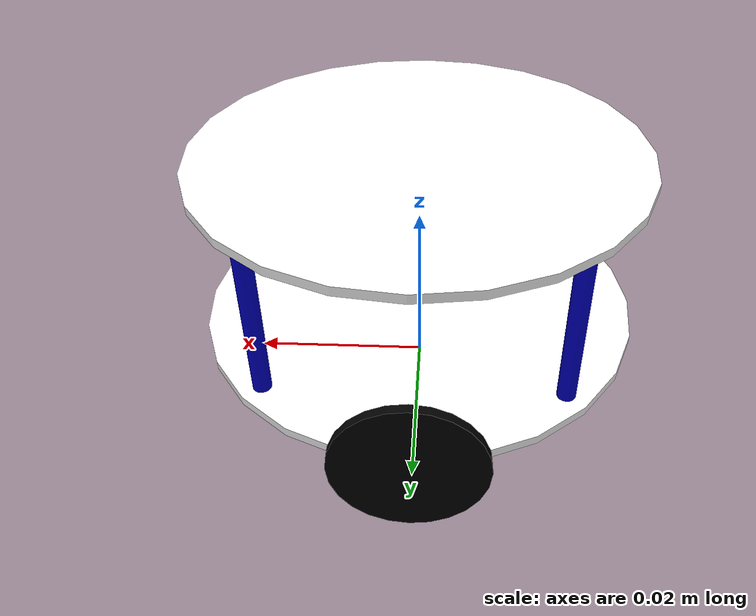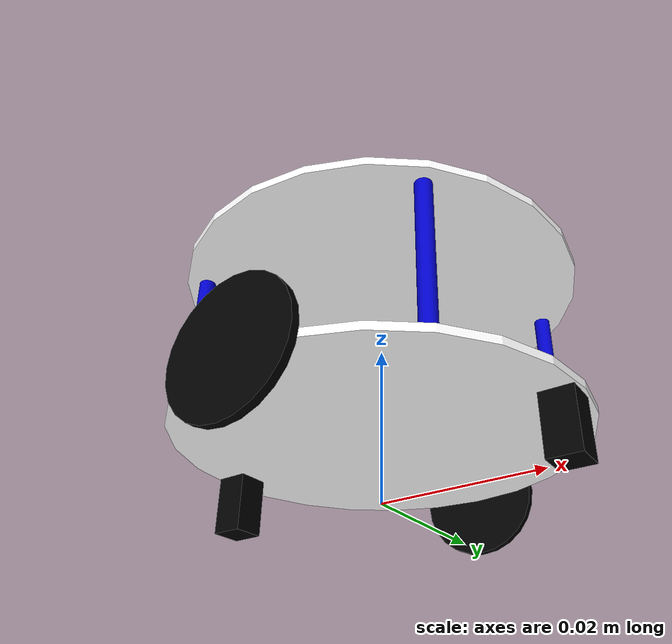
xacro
<?xml version="1.0"?>

<robot name="inof" xmlns:xacro="http://www.ros.org/wiki/xacro">

	<xacro:property name="layerlen"  value="0.001"/>
	<xacro:property name="layerradi" value="0.025"/>
	<xacro:property name="supportlen"  value="0.02"/>
	<xacro:property name="supportradi" value="0.001"/>
	<xacro:property name="wheellen"  value="0.001"/>
	<xacro:property name="wheelradi" value="0.008"/>
	<xacro:property name="casterlen" value="0.004"/>
	<xacro:property name="casterwid" value="0.004"/>
	<xacro:property name="casterhgt" value="0.0079"/>

	<xacro:property name="layerweight" value="0.0021009"/>
	<xacro:property name="supportweight" value="0.0000672"/>
	<xacro:property name="wheelweight" value="0.0002151"/>
	<xacro:property name="casterweight" value="0.0001352"/>

	<material name="white_tr">
		<color rgba="1 1 1 1"/>
	</material>

	<material name="blackish">
		<color rgba="0 0 0.8 1"/>
	</material>

	<material name="black">
		<color rgba="0 0 0 1"/>
	</material>

	<xacro:macro name="layer" params="level x y z">
		<link name="layer${level}">
			<visual>
				<origin rpy="0 0 0" xyz="${x} ${y} ${z}"/>
				<geometry>
					<cylinder length="${layerlen}" radius="${layerradi}"/>
				</geometry>
				<material name="white_tr"/>
			</visual>
			<collision>
				<origin rpy="0 0 0" xyz="${x} ${y} ${z}"/>
				<geometry>
					<cylinder length="${layerlen}" radius="${layerradi}"/>
				</geometry>
			</collision>
			<inertial>
				<origin rpy="0 0 0" xyz="${x} ${y} ${z}"/>
				<mass value="${layerweight}"/>
				<inertia ixx="${(layerweight*((3*layerradi*layerradi)+(layerlen*layerlen)))/12}" ixy="0" ixz="0" iyy="${(layerweight*((3*layerradi*layerradi)+(layerlen*layerlen)))/12}" iyz="0" izz="${(layerweight*(layerradi*layerradi))/2}"/>
			</inertial>
		</link>
		<gazebo reference="layer${level}">
			<material>Gazebo/BlackTransparent</material>
		</gazebo>
	</xacro:macro>

	<xacro:macro name="support_leg" params="number x y z">
		<link name="support_leg${number}">
			<visual>
				<origin rpy="0 0 0" xyz="${x} ${y} ${z}"/>
				<geometry>
					<cylinder length="${supportlen}" radius="${supportradi}"/>
				</geometry>
				<material name="blackish"/>
			</visual>
			<collision>
				<origin rpy="0 0 0" xyz="${x} ${y} ${z}"/>
				<geometry>
					<cylinder length="${supportlen}" radius="${supportradi}"/>
				</geometry>
			</collision>
			<inertial>
				<origin rpy="0 0 0" xyz="${x} ${y} ${z}"/>
				<mass value="${supportweight}"/>
				<inertia ixx="${(supportweight*((3*supportradi*supportradi)+(supportlen*supportlen)))/12}" ixy="0" ixz="0" iyy="${(supportweight*((3*supportradi*supportradi)+(supportlen*supportlen)))/12}" iyz="0" izz="${(supportweight*(supportradi*supportradi))/2}"/>
			</inertial>
		</link>
	</xacro:macro>

	<xacro:macro name="caster_wheel" params="num x y z c">
		<link name="caster_wheel${num}">
			<visual>
				<origin rpy="0 0 0" xyz="${x} ${y} ${z}"/>
				<geometry>
					<box size="${casterlen} ${casterwid} ${casterhgt}"/>
				</geometry>
				<material name="black"/>
			</visual>
			<collision>
				<origin rpy="0 0 0" xyz="${x} ${y} ${z}"/>
				<geometry>
					<box size="${casterlen} ${casterwid} ${casterhgt}"/>
				</geometry>
			</collision>
			<inertial>
				<origin rpy="0 0 0" xyz="${x} ${y} ${z}"/>
				<mass value="${casterweight}"/>
				<inertia ixx="${(casterweight*((casterlen*casterlen)+(casterhgt*casterhgt)))/12}" ixy="0" ixz="0" iyy="${(casterweight*((casterwid*casterwid)+(casterhgt*casterhgt)))/12}" iyz="0" izz="${(casterweight*((casterlen*casterlen)+(casterwid*casterwid)))/2}"/>
			</inertial>
		</link>
	</xacro:macro>

	<xacro:macro name="wheel" params="pos x y z">
		<link name="wheel${pos}">
			<visual>
				<origin rpy="0 ${pi/2} 0" xyz="${x} ${y} ${z}"/>
				<geometry>
					<cylinder length="${wheellen}" radius="${wheelradi}"/>
				</geometry>
				<material name="black"/>
			</visual>
			<collision>
				<origin rpy="0 ${pi/2} 0" xyz="${x} ${y} ${z}"/>
				<geometry>
					<cylinder length="${wheellen}" radius="${wheelradi}"/>
				</geometry>
			</collision>
			<inertial>
				<origin rpy="0 ${pi/2} 0" xyz="${x} ${y} ${z}"/>
				<mass value="${wheelweight}"/>
				<inertia ixx="${(wheelweight*((3*wheelradi*wheelradi)+(wheellen*wheellen)))/12}" ixy="0" ixz="0" iyy="${(wheelweight*((3*wheelradi*wheelradi)+(wheellen*wheellen)))/12}" iyz="0" izz="${(wheelweight*(wheelradi*wheelradi))/2}"/>
			</inertial>
		</link>

		<gazebo reference="wheel${pos}">
			<mu1 value="200.0"/>
			<mu2 value="100.0"/>
			<kp value="10000000.0"/>
			<kd value="1.0"/>
			<material>Gazebo/Grey</material>
		</gazebo>
	</xacro:macro>

	<xacro:macro name="layer_wheel_joint" params="pos x y z">
		<joint name="layer0_wheel${pos}_joint" type="continuous">
			<parent link="layer0"/>
			<child link="wheel${pos}"/>
			<origin xyz="${x} ${y} ${z}" rpy="0 0 ${pi/2}"/>
			<axis xyz="1 0 0" rpy="0 0 0"/>
		</joint>
	</xacro:macro>

	<xacro:macro name="layer_support_joint" params="layer num x y z">
		<joint name="layer${layer}_support${num}_joint" type="fixed">
			<parent link="layer${layer}"/>
			<child link="support_leg${num}"/>
			<origin xyz="${x} ${y} ${z}"/>
		</joint>
	</xacro:macro>

	<xacro:macro name="support_layer_joint" params="layer num x y z">
		<joint name="support${num}_layer${layer}_joint" type="fixed">
			<child link="layer${layer}"/>
			<parent link="support_leg${num}"/>
			<origin xyz="${x} ${y} ${z}"/>
		</joint>
	</xacro:macro>

	<xacro:macro name="joint_transmission" params="pos">
		<transmission name="wheel${pos}_trans">
			<type>transmission_interface/SimpleTransmission</type>
			<actuator name="$wheel${pos}_motor">
				<mechanicalReduction>1</mechanicalReduction>
				<hardwareInterface>hardware_interface/VelocityJointInterface</hardwareInterface>
			</actuator>
			<joint name="layer0_wheel${pos}_joint">
				<hardwareInterface>hardware_interface/VelocityJointInterface</hardwareInterface>
			</joint>
		</transmission>
	</xacro:macro>

	<xacro:macro name="layer_caster_joint" params="num x y z">
		<joint name="layer0_caster${num}" type="fixed">
			<child link="caster_wheel${num}"/>
			<parent link="layer0"/>
			<origin xyz="${x} ${y} ${z}"/>
		</joint>
	</xacro:macro>

	<xacro:layer level="0" x="0" y="0" z="${wheelradi}"/>
	<xacro:support_leg number="0" x="0" y="0" z="${supportlen/2}"/>
	<xacro:support_leg number="1" x="0" y="0" z="${supportlen/2}"/>
	<xacro:support_leg number="2" x="0" y="0" z="${supportlen/2}"/>
	<xacro:support_leg number="3" x="0" y="0" z="${supportlen/2}"/>
	<xacro:layer level="1" x="0" y="0" z="0"/>
	<xacro:wheel pos="r" x="0" y="0" z="0"/>
	<xacro:wheel pos="l" x="0" y="0" z="0"/>
	<xacro:caster_wheel num="0" x="0" y="0" z="${-casterhgt/2}" c="Blue"/>
	<xacro:caster_wheel num="1" x="0" y="0" z="${-casterhgt/2}" c="Grey"/>

	<xacro:layer_wheel_joint pos="l" y="${(layerradi+(wheellen/2))}" x="0" z="${wheelradi}"/>
	<xacro:layer_wheel_joint pos="r" y="${-(layerradi+(wheellen/2))}" x="0" z="${wheelradi}"/>
	<xacro:layer_support_joint layer="0" num="0" x="${0.9*(layerradi)*cos(1*pi/4)}" y="${0.9*(layerradi)*sin(1*pi/4)}" z="${wheelradi}"/>
	<xacro:layer_support_joint layer="0" num="1" x="${0.9*(layerradi)*cos(3*pi/4)}" y="${0.9*(layerradi)*sin(3*pi/4)}" z="${wheelradi}"/>
	<xacro:layer_support_joint layer="0" num="2" x="${0.9*(layerradi)*cos(5*pi/4)}" y="${0.9*(layerradi)*sin(5*pi/4)}" z="${wheelradi}"/>
	<xacro:layer_support_joint layer="0" num="3" x="${0.9*(layerradi)*cos(7*pi/4)}" y="${0.9*(layerradi)*sin(7*pi/4)}" z="${wheelradi}"/>
	<xacro:support_layer_joint layer="1" num="0" x="${-0.9*(layerradi)*cos(1*pi/4)}" y="${-0.9*(layerradi)*sin(1*pi/4)}" z="${supportlen}"/>
	<xacro:layer_caster_joint num="0" y="${0.9*(layerradi)*cos(1*pi/2)}" x=" ${0.9*(layerradi)*sin(1*pi/2)}" z=" ${wheelradi}"/>
	<xacro:layer_caster_joint num="1" y="${0.9*(layerradi)*cos(3*pi/2)}" x=" ${0.9*(layerradi)*sin(3*pi/2)}" z=" ${wheelradi}"/>
	<xacro:joint_transmission pos="r"/>
	<xacro:joint_transmission pos="l"/>

	<gazebo>
		<plugin name="gazebo_ros_control" filename="libgazebo_ros_control.so">
			<robotNamespace>/</robotNamespace>
		</plugin>
	</gazebo>

</robot>
